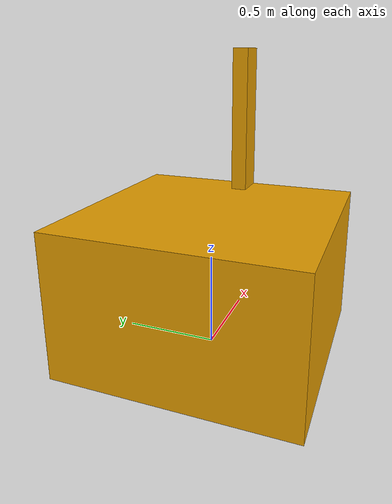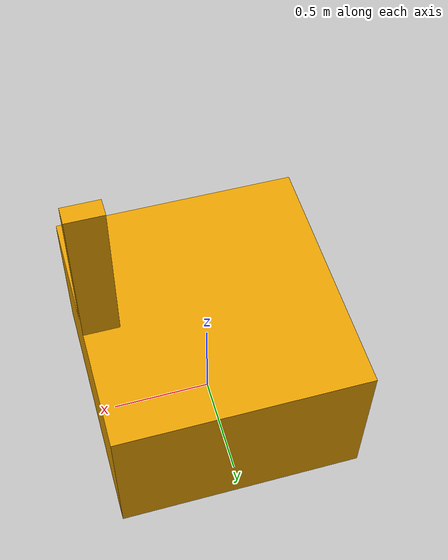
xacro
<?xml version="1.0"?>
<robot xmlns:xacro="http://ros.org/wiki/xacro"
       name="robot_cell" >

  <!-- Robot Cell -->
  <link name="robot_cell_link">
    <inertial>
      <origin xyz="0 0 0" rpy="0 0 0" />
      <mass value="0.1"/>
      <inertia ixx="1" ixy="0" ixz="0" iyy="1" iyz="0" izz="1" />
    </inertial>
    <visual>
      <origin xyz="0 0 0" rpy="0 0 0" />
      <geometry>
        <mesh filename="package://macs_dual_arm/meshes/robot_cell/visual/robot_cell.dae"/>
      </geometry>
    </visual>
    <collision>
      <origin xyz = "0.6 0 -0.62" rpy="0 ${-pi/2} 0" />
      <geometry>
        <mesh filename="package://macs_dual_arm/meshes/robot_cell/collision/robot_cell_simplified.stl"
        scale = "0.001 0.001 0.001"/>
      </geometry>
    </collision>
  </link>

  <!-- Used for fixing robot to Gazebo 'base_link' -->
  <link name="world"/>
  <!-- Robot Cell to World Joint -->
  <joint name="fixed" type="fixed">
    <origin xyz = "0 0 0" rpy="${pi/2} 0 0" />
    <parent link="world"/>
    <child link="robot_cell_link"/>
  </joint>

</robot>
